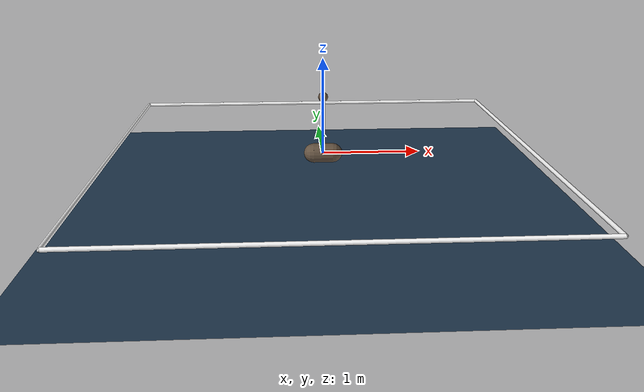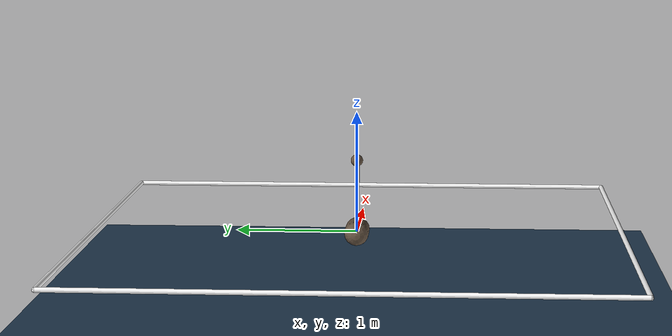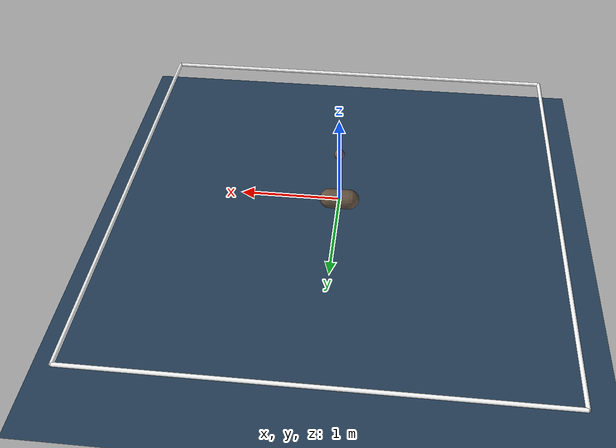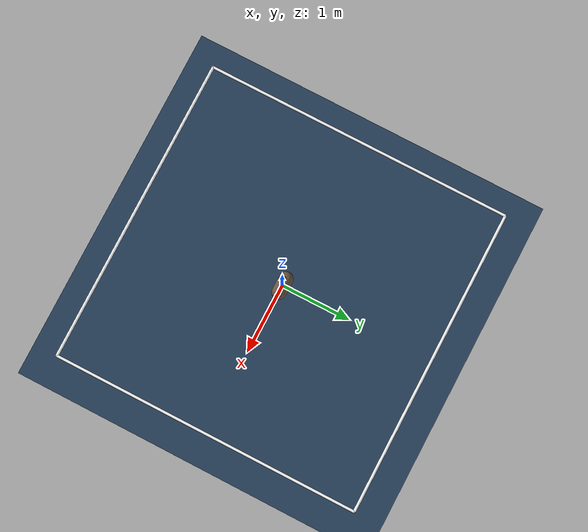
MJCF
<mujoco model="inverted two-axis pendulum">
  <compiler inertiafromgeom="true"/>
  <default>
    <joint armature="0" damping="1" limited="true"/>
    <geom contype="0" friction="1 0.1 0.1" rgba="0.4 0.33 0.26 1.0"/>
    <tendon/>
    <motor ctrlrange="-3 3"/>
  </default>
  <option gravity="0 0 -9.81" timestep="0.02" />
  <custom>
    <!-- brax custom params, I have no idea what to do with these....-->
    <numeric data="10000" name="constraint_stiffness"/>
    <numeric data="10000" name="constraint_limit_stiffness"/>
    <numeric data="0" name="spring_mass_scale"/>
    <numeric data="1" name="spring_inertia_scale"/>
    <numeric data="5" name="solver_maxls"/>
  </custom>
  <size nstack="3000"/>

  <asset>
    <texture type="skybox" builtin="gradient" rgb1="0.8 0.8 0.8" rgb2="0 0 0" width="512" height="3072"/>
    <texture name="floor_tex" type="2d" builtin="checker" rgb1=".2 .3 .4" rgb2=".1 .2 .3" width="100" height="100" />
    <material name="floor_material" texture="floor_tex" texuniform="true" />
  </asset>

  <worldbody>
    <light cutoff="100" diffuse="1 1 1" dir="-0 0 -1.2" directional="true" exponent="1" pos="0 0 1.3" specular=".1 .1 .1"/>
    <geom conaffinity="1" condim="3" material="floor_material" name="floor" pos="0 0 -0.50" size="40 40 40" type="plane" rgba="0.5 0.5 0.5 1.0"/>
    <light diffuse=".5 .5 .5" pos="0 0 3" dir="0 0 -1"/>

    <geom pos="0 2.2 0" quat="0.707 0 0.707 0" size="0.02 2.2" type="capsule" rgba="1 1 1 1"/>
    <geom pos="0 -2.2 0" quat="0.707 0 0.707 0" size="0.02 2.2" type="capsule" rgba="1 1 1 1"/>
    <geom pos="2.2 0 0" quat="0.707 0.707 0 0" size="0.02 2.2" type="capsule" rgba="1 1 1 1"/>
    <geom pos="-2.2 0 0" quat="0.707 0.707 0 0" size="0.02 2.2" type="capsule" rgba="1 1 1 1"/>

    <body name="cart" pos="0 0 0">
      <joint axis="1 0 0" limited="true" name="x_slider" pos="0 0 0" range="-2 2" type="slide"/>
      <joint axis="0 1 0" limited="true" name="y_slider" pos="0 0 0" range="-2 2" type="slide"/>
      <geom name="cart" pos="0 0 0" quat="0.707 0 0.707 0" size="0.1 0.1" type="capsule" mass="1"/>

      <body name="pole" pos="0 0 0">
        <joint axis="0 1 0" limited="false" name="hinge_x" pos="0 0 0" type="hinge"/>
        <joint axis="1 0 0" limited="false" name="hinge_y" pos="0 0 0" type="hinge"/>
        <geom fromto="0 0 0 0 0 0.6" name="pole"  size="0.02" type="capsule" mass="1e-9"/>
        <geom name="mass" type="sphere" size="0.05" pos="0 0 0.6" mass="0.333"/>
      </body>
    </body>
  </worldbody>

  <actuator>
    <motor ctrllimited="true" ctrlrange="-1 1" gear="100" joint="x_slider" name="x_slide"/>
    <motor ctrllimited="true" ctrlrange="-1 1" gear="100" joint="y_slider" name="y_slide"/>
  </actuator>
</mujoco>
